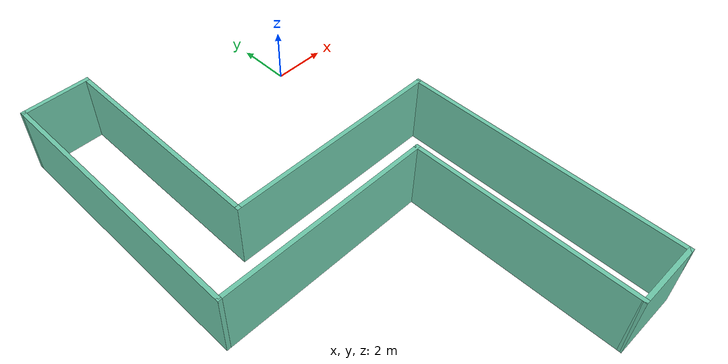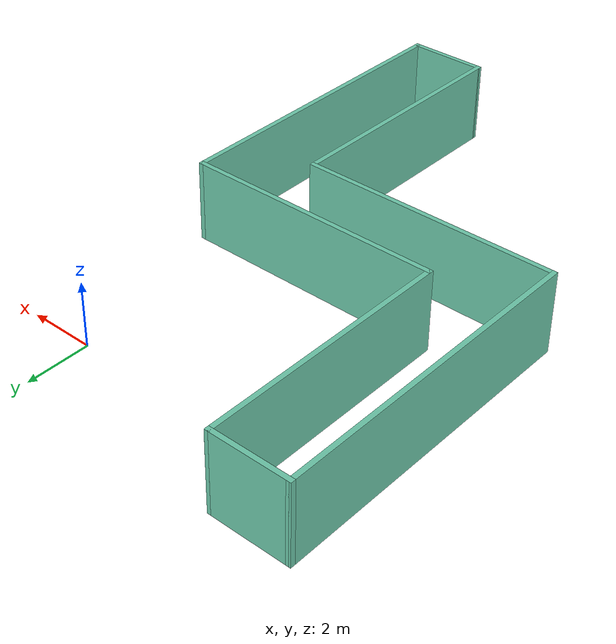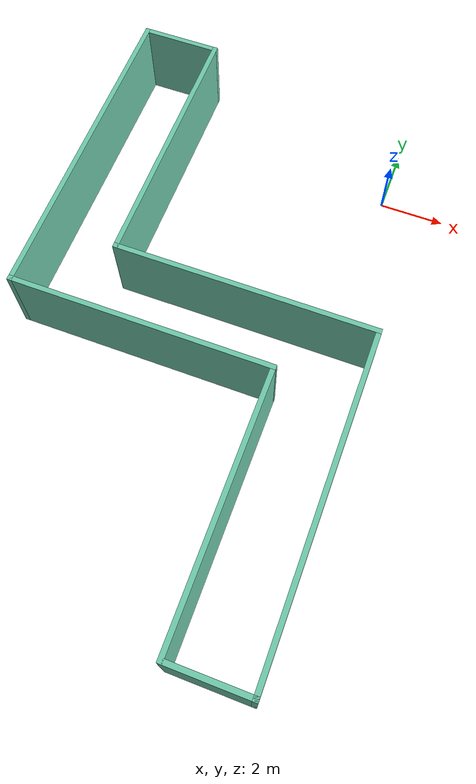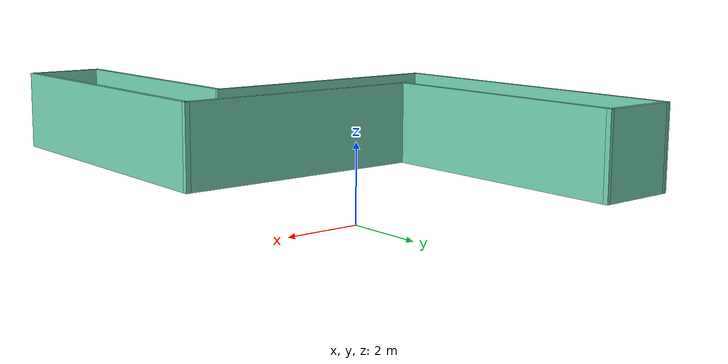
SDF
<?xml version='1.0'?>
<sdf version='1.7'>
  <model name='walls'>
    <pose>-3.8569 -6.65277 0 0 -0 0</pose>
    <link name='Wall_12'>
      <collision name='Wall_12_Collision'>
        <geometry>
          <box>
            <size>10 0.15 2.5</size>
          </box>
        </geometry>
        <pose>0 0 1.25 0 -0 0</pose>
      </collision>
      <visual name='Wall_12_Visual'>
        <pose>0 0 1.25 0 -0 0</pose>
        <geometry>
          <box>
            <size>10 0.15 2.5</size>
          </box>
        </geometry>
        <material>
          <script>
            <uri>file://media/materials/scripts/gazebo.material</uri>
            <name>Gazebo/Grey</name>
          </script>
          <ambient>0.435294 0.796078 0.67451 1</ambient>
        </material>
        <meta>
          <layer>0</layer>
        </meta>
      </visual>
      <pose>-5.09968 3.92522 0 0 -0 -1.5708</pose>
    </link>
    <link name='Wall_14'>
      <collision name='Wall_14_Collision'>
        <geometry>
          <box>
            <size>2.5 0.15 2.5</size>
          </box>
        </geometry>
        <pose>0 0 1.25 0 -0 0</pose>
      </collision>
      <visual name='Wall_14_Visual'>
        <pose>0 0 1.25 0 -0 0</pose>
        <geometry>
          <box>
            <size>2.5 0.15 2.5</size>
          </box>
        </geometry>
        <material>
          <script>
            <uri>file://media/materials/scripts/gazebo.material</uri>
            <name>Gazebo/Grey</name>
          </script>
          <ambient>0.435294 0.796078 0.67451 1</ambient>
        </material>
        <meta>
          <layer>0</layer>
        </meta>
      </visual>
      <pose>-3.92489 8.84999 0 0 -0 -0.000193</pose>
    </link>
    <link name='Wall_15'>
      <collision name='Wall_15_Collision'>
        <geometry>
          <box>
            <size>8 0.15 2.5</size>
          </box>
        </geometry>
        <pose>0 0 1.25 0 -0 0</pose>
      </collision>
      <visual name='Wall_15_Visual'>
        <pose>0 0 1.25 0 -0 0</pose>
        <geometry>
          <box>
            <size>8 0.15 2.5</size>
          </box>
        </geometry>
        <material>
          <script>
            <uri>file://media/materials/scripts/gazebo.material</uri>
            <name>Gazebo/Grey</name>
          </script>
          <ambient>0.435294 0.796078 0.67451 1</ambient>
        </material>
        <meta>
          <layer>0</layer>
        </meta>
      </visual>
      <pose>-2.7501 4.92477 0 0 -0 -1.5708</pose>
    </link>
    <link name='Wall_17'>
      <collision name='Wall_17_Collision'>
        <geometry>
          <box>
            <size>8 0.15 2.5</size>
          </box>
        </geometry>
        <pose>0 0 1.25 0 -0 0</pose>
      </collision>
      <visual name='Wall_17_Visual'>
        <pose>0 0 1.25 0 -0 0</pose>
        <geometry>
          <box>
            <size>8 0.15 2.5</size>
          </box>
        </geometry>
        <material>
          <script>
            <uri>file://media/materials/scripts/gazebo.material</uri>
            <name>Gazebo/Grey</name>
          </script>
          <ambient>0.435294 0.796078 0.67451 1</ambient>
        </material>
        <meta>
          <layer>0</layer>
        </meta>
      </visual>
      <pose>-1.17468 -0.999779 0 0 -0 0</pose>
    </link>
    <link name='Wall_19'>
      <collision name='Wall_19_Collision'>
        <geometry>
          <box>
            <size>8 0.15 2.5</size>
          </box>
        </geometry>
        <pose>0 0 1.25 0 -0 0</pose>
      </collision>
      <visual name='Wall_19_Visual'>
        <pose>0 0 1.25 0 -0 0</pose>
        <geometry>
          <box>
            <size>8 0.15 2.5</size>
          </box>
        </geometry>
        <material>
          <script>
            <uri>file://media/materials/scripts/gazebo.material</uri>
            <name>Gazebo/Grey</name>
          </script>
          <ambient>0.435294 0.796078 0.67451 1</ambient>
        </material>
        <meta>
          <layer>0</layer>
        </meta>
      </visual>
      <pose>1.1749 0.999766 0 0 -0 0</pose>
    </link>
    <link name='Wall_22'>
      <collision name='Wall_22_Collision'>
        <geometry>
          <box>
            <size>8 0.15 2.5</size>
          </box>
        </geometry>
        <pose>0 0 1.25 0 -0 0</pose>
      </collision>
      <visual name='Wall_22_Visual'>
        <pose>0 0 1.25 0 -0 0</pose>
        <geometry>
          <box>
            <size>8 0.15 2.5</size>
          </box>
        </geometry>
        <material>
          <script>
            <uri>file://media/materials/scripts/gazebo.material</uri>
            <name>Gazebo/Grey</name>
          </script>
          <ambient>0.435294 0.796078 0.67451 1</ambient>
        </material>
        <meta>
          <layer>0</layer>
        </meta>
      </visual>
      <pose>2.75011 -4.92501 0 0 -0 -1.57085</pose>
    </link>
    <link name='Wall_24'>
      <collision name='Wall_24_Collision'>
        <geometry>
          <box>
            <size>2.5 0.15 2.5</size>
          </box>
        </geometry>
        <pose>0 0 1.25 0 -0 0</pose>
      </collision>
      <visual name='Wall_24_Visual'>
        <pose>0 0 1.25 0 -0 0</pose>
        <geometry>
          <box>
            <size>2.5 0.15 2.5</size>
          </box>
        </geometry>
        <material>
          <script>
            <uri>file://media/materials/scripts/gazebo.material</uri>
            <name>Gazebo/Grey</name>
          </script>
          <ambient>0.435294 0.796078 0.67451 1</ambient>
        </material>
        <meta>
          <layer>0</layer>
        </meta>
      </visual>
      <pose>3.9249 -8.85023 0 0 -0 0</pose>
    </link>
    <link name='Wall_26'>
      <collision name='Wall_26_Collision'>
        <geometry>
          <box>
            <size>10 0.15 2.5</size>
          </box>
        </geometry>
        <pose>0 0 1.25 0 -0 0</pose>
      </collision>
      <visual name='Wall_26_Visual'>
        <pose>0 0 1.25 0 -0 0</pose>
        <geometry>
          <box>
            <size>10 0.15 2.5</size>
          </box>
        </geometry>
        <material>
          <script>
            <uri>file://media/materials/scripts/gazebo.material</uri>
            <name>Gazebo/Grey</name>
          </script>
          <ambient>0.435294 0.796078 0.67451 1</ambient>
        </material>
        <meta>
          <layer>0</layer>
        </meta>
      </visual>
      <pose>5.0999 -3.92523 0 0 -0 1.5708</pose>
    </link>
    <static>1</static>
  </model>
</sdf>
